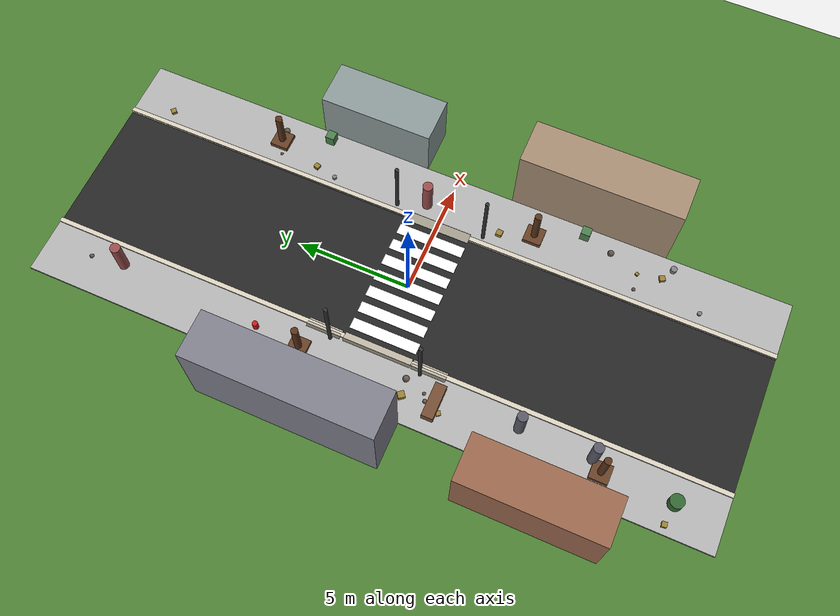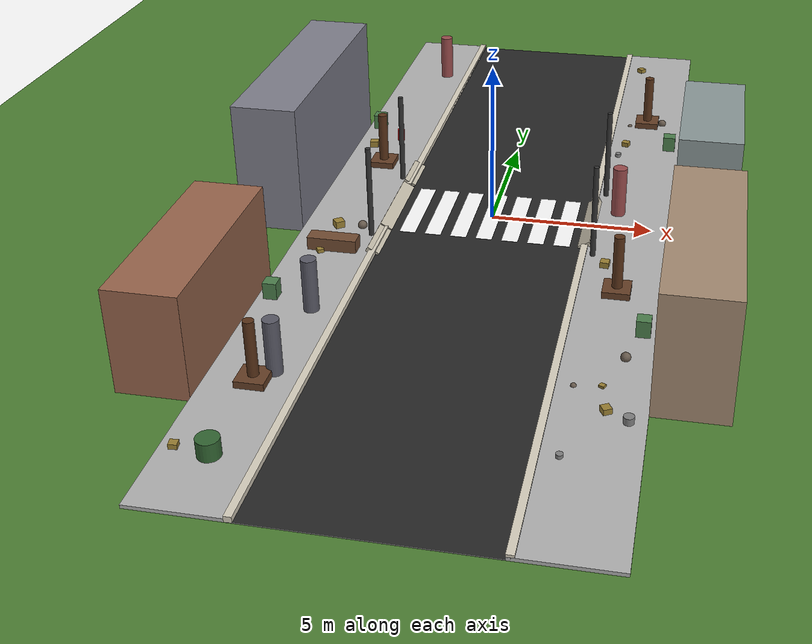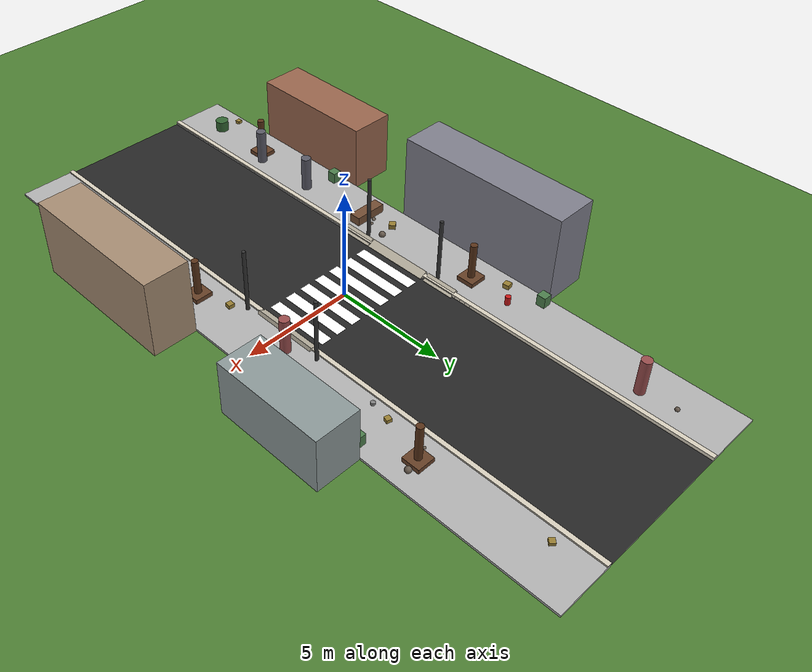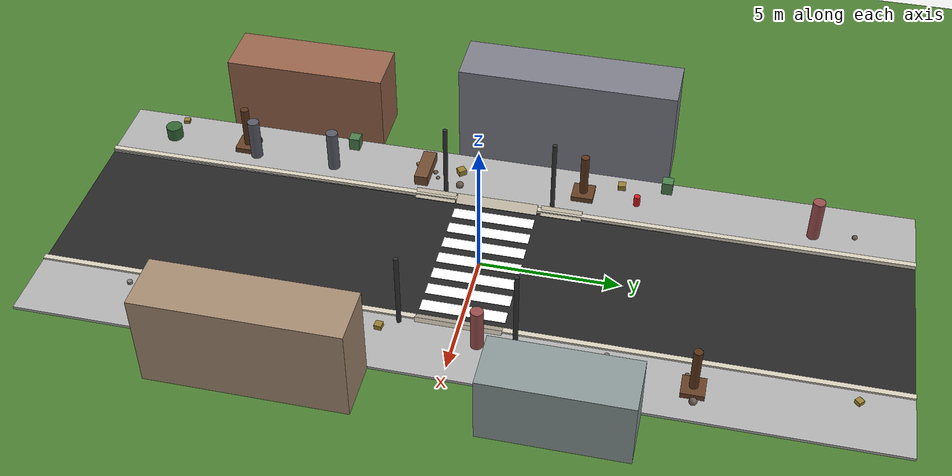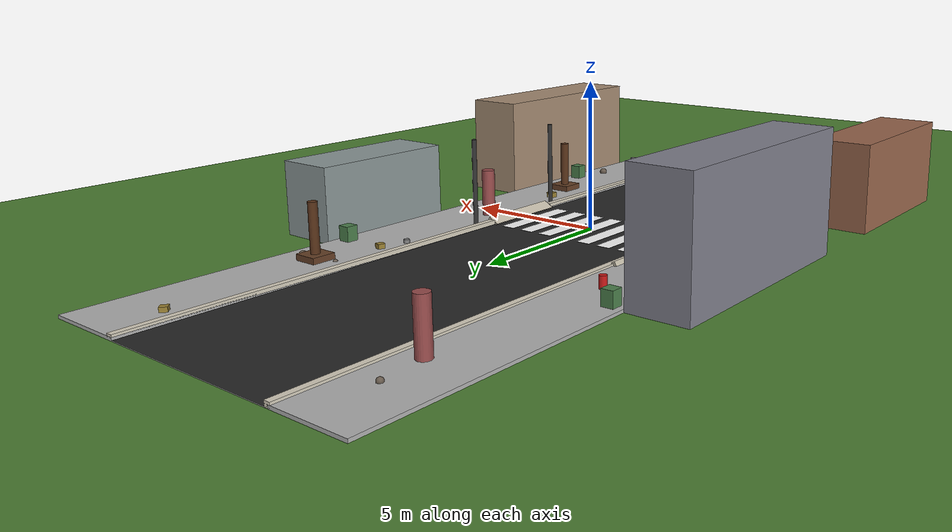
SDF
<?xml version="1.0" ?>
<sdf version="1.9">
  <world name="level4_unseen_eval">
    <physics name="1ms" type="ignore">
      <max_step_size>0.001</max_step_size>
      <real_time_factor>1.0</real_time_factor>
    </physics>
    <plugin filename="gz-sim-physics-system" name="gz::sim::systems::Physics"/>
    <plugin filename="gz-sim-scene-broadcaster-system" name="gz::sim::systems::SceneBroadcaster"/>
    <plugin filename="gz-sim-sensors-system" name="gz::sim::systems::Sensors">
      <render_engine>ogre2</render_engine>
    </plugin>
    <plugin filename="gz-sim-user-commands-system" name="gz::sim::systems::UserCommands"/>

    <light type="directional" name="sun">
      <cast_shadows>true</cast_shadows>
      <pose>0 0 10 0 0 0</pose>
      <diffuse>0.8 0.8 0.8 1</diffuse>
      <specular>0.2 0.2 0.2 1</specular>
      <attenuation><range>1000</range><constant>0.9</constant><linear>0.01</linear><quadratic>0.001</quadratic></attenuation>
      <direction>-0.5 0.1 -0.9</direction>
    </light>

    <!-- Level 4: 미확인 검증 환경 - 훈련 세트와 다른 배치, 정적+동적 보행자 혼합 -->

    <model name="ground_plane_visual">
      <static>true</static>
      <pose>0 0 -0.01 0 0 0</pose>
      <link name="link">
        <collision name="collision"><geometry><box><size>100 100 0.02</size></box></geometry></collision>
        <visual name="visual"><geometry><box><size>100 100 0.02</size></box></geometry>
          <material><ambient>0.3 0.5 0.2 1</ambient><diffuse>0.3 0.5 0.2 1</diffuse></material></visual>
      </link>
    </model>

    <model name="road">
      <static>true</static>
      <pose>0 0 0.01 0 0 0</pose>
      <link name="link">
        <collision name="collision"><geometry><box><size>6.0 30.0 0.02</size></box></geometry></collision>
        <visual name="visual"><geometry><box><size>6.0 30.0 0.02</size></box></geometry>
          <material><ambient>0.15 0.15 0.15 1</ambient><diffuse>0.15 0.15 0.15 1</diffuse></material></visual>
      </link>
    </model>

    <model name="sidewalk_left">
      <static>true</static>
      <pose>-4.3 0 0.05 0 0 0</pose>
      <link name="link">
        <collision name="collision"><geometry><box><size>2.6 30.0 0.1</size></box></geometry></collision>
        <visual name="visual"><geometry><box><size>2.6 30.0 0.1</size></box></geometry>
          <material><ambient>0.7 0.7 0.7 1</ambient><diffuse>0.7 0.7 0.7 1</diffuse></material></visual>
      </link>
    </model>

    <model name="sidewalk_right">
      <static>true</static>
      <pose>4.3 0 0.05 0 0 0</pose>
      <link name="link">
        <collision name="collision"><geometry><box><size>2.6 30.0 0.1</size></box></geometry></collision>
        <visual name="visual"><geometry><box><size>2.6 30.0 0.1</size></box></geometry>
          <material><ambient>0.7 0.7 0.7 1</ambient><diffuse>0.7 0.7 0.7 1</diffuse></material></visual>
      </link>
    </model>

    <model name="crosswalk_1">
      <static>true</static>
      <pose>-2.4 0 0.02 0 0 0</pose>
      <link name="link">
        <collision name="collision"><geometry><box><size>0.5 3 0.01</size></box></geometry></collision>
        <visual name="visual"><geometry><box><size>0.5 3 0.01</size></box></geometry>
          <material><ambient>1 1 1 1</ambient><diffuse>1 1 1 1</diffuse></material></visual>
      </link>
    </model>

    <model name="crosswalk_2">
      <static>true</static>
      <pose>-1.6 0 0.02 0 0 0</pose>
      <link name="link">
        <collision name="collision"><geometry><box><size>0.5 3 0.01</size></box></geometry></collision>
        <visual name="visual"><geometry><box><size>0.5 3 0.01</size></box></geometry>
          <material><ambient>1 1 1 1</ambient><diffuse>1 1 1 1</diffuse></material></visual>
      </link>
    </model>

    <model name="crosswalk_3">
      <static>true</static>
      <pose>-0.8 0 0.02 0 0 0</pose>
      <link name="link">
        <collision name="collision"><geometry><box><size>0.5 3 0.01</size></box></geometry></collision>
        <visual name="visual"><geometry><box><size>0.5 3 0.01</size></box></geometry>
          <material><ambient>1 1 1 1</ambient><diffuse>1 1 1 1</diffuse></material></visual>
      </link>
    </model>

    <model name="crosswalk_4">
      <static>true</static>
      <pose>0.0 0 0.02 0 0 0</pose>
      <link name="link">
        <collision name="collision"><geometry><box><size>0.5 3 0.01</size></box></geometry></collision>
        <visual name="visual"><geometry><box><size>0.5 3 0.01</size></box></geometry>
          <material><ambient>1 1 1 1</ambient><diffuse>1 1 1 1</diffuse></material></visual>
      </link>
    </model>

    <model name="crosswalk_5">
      <static>true</static>
      <pose>0.8 0 0.02 0 0 0</pose>
      <link name="link">
        <collision name="collision"><geometry><box><size>0.5 3 0.01</size></box></geometry></collision>
        <visual name="visual"><geometry><box><size>0.5 3 0.01</size></box></geometry>
          <material><ambient>1 1 1 1</ambient><diffuse>1 1 1 1</diffuse></material></visual>
      </link>
    </model>

    <model name="crosswalk_6">
      <static>true</static>
      <pose>1.6 0 0.02 0 0 0</pose>
      <link name="link">
        <collision name="collision"><geometry><box><size>0.5 3 0.01</size></box></geometry></collision>
        <visual name="visual"><geometry><box><size>0.5 3 0.01</size></box></geometry>
          <material><ambient>1 1 1 1</ambient><diffuse>1 1 1 1</diffuse></material></visual>
      </link>
    </model>

    <model name="crosswalk_7">
      <static>true</static>
      <pose>2.4 0 0.02 0 0 0</pose>
      <link name="link">
        <collision name="collision"><geometry><box><size>0.5 3 0.01</size></box></geometry></collision>
        <visual name="visual"><geometry><box><size>0.5 3 0.01</size></box></geometry>
          <material><ambient>1 1 1 1</ambient><diffuse>1 1 1 1</diffuse></material></visual>
      </link>
    </model>

    <model name="curb_left_south">
      <static>true</static>
      <pose>-3.1 -8.25 0.09 0 0 0</pose>
      <link name="link">
        <collision name="collision"><geometry><box><size>0.2 13.5 0.16</size></box></geometry></collision>
        <visual name="visual"><geometry><box><size>0.2 13.5 0.16</size></box></geometry>
          <material><ambient>0.85 0.82 0.75 1</ambient><diffuse>0.85 0.82 0.75 1</diffuse></material></visual>
      </link>
    </model>

    <model name="curb_left_north">
      <static>true</static>
      <pose>-3.1 8.25 0.09 0 0 0</pose>
      <link name="link">
        <collision name="collision"><geometry><box><size>0.2 13.5 0.16</size></box></geometry></collision>
        <visual name="visual"><geometry><box><size>0.2 13.5 0.16</size></box></geometry>
          <material><ambient>0.85 0.82 0.75 1</ambient><diffuse>0.85 0.82 0.75 1</diffuse></material></visual>
      </link>
    </model>

    <model name="curb_right_south">
      <static>true</static>
      <pose>3.1 -8.25 0.09 0 0 0</pose>
      <link name="link">
        <collision name="collision"><geometry><box><size>0.2 13.5 0.16</size></box></geometry></collision>
        <visual name="visual"><geometry><box><size>0.2 13.5 0.16</size></box></geometry>
          <material><ambient>0.85 0.82 0.75 1</ambient><diffuse>0.85 0.82 0.75 1</diffuse></material></visual>
      </link>
    </model>

    <model name="curb_right_north">
      <static>true</static>
      <pose>3.1 8.25 0.09 0 0 0</pose>
      <link name="link">
        <collision name="collision"><geometry><box><size>0.2 13.5 0.16</size></box></geometry></collision>
        <visual name="visual"><geometry><box><size>0.2 13.5 0.16</size></box></geometry>
          <material><ambient>0.85 0.82 0.75 1</ambient><diffuse>0.85 0.82 0.75 1</diffuse></material></visual>
      </link>
    </model>

    <model name="curb_ramp_left">
      <static>true</static>
      <pose>-3.1 0 0.08 0 0.5 0</pose>
      <link name="link">
        <collision name="collision"><geometry><box><size>0.4 3 0.16</size></box></geometry></collision>
        <visual name="visual"><geometry><box><size>0.4 3 0.16</size></box></geometry>
          <material><ambient>0.75 0.72 0.65 1</ambient><diffuse>0.75 0.72 0.65 1</diffuse></material></visual>
      </link>
    </model>

    <model name="curb_ramp_right">
      <static>true</static>
      <pose>3.1 0 0.08 0 -0.5 0</pose>
      <link name="link">
        <collision name="collision"><geometry><box><size>0.4 3 0.16</size></box></geometry></collision>
        <visual name="visual"><geometry><box><size>0.4 3 0.16</size></box></geometry>
          <material><ambient>0.75 0.72 0.65 1</ambient><diffuse>0.75 0.72 0.65 1</diffuse></material></visual>
      </link>
    </model>

    <model name="curb_extra_ramp_0">
      <static>true</static>
      <pose>-3.1 -2.30 0.08 0 0.5 0</pose>
      <link name="link">
        <collision name="collision"><geometry><box><size>0.4 1.5 0.16</size></box></geometry></collision>
        <visual name="visual"><geometry><box><size>0.4 1.5 0.16</size></box></geometry>
          <material><ambient>0.75 0.72 0.65 1</ambient><diffuse>0.75 0.72 0.65 1</diffuse></material></visual>
      </link>
    </model>

    <model name="curb_extra_ramp_1">
      <static>true</static>
      <pose>-3.1 2.39 0.08 0 0.5 0</pose>
      <link name="link">
        <collision name="collision"><geometry><box><size>0.4 1.5 0.16</size></box></geometry></collision>
        <visual name="visual"><geometry><box><size>0.4 1.5 0.16</size></box></geometry>
          <material><ambient>0.75 0.72 0.65 1</ambient><diffuse>0.75 0.72 0.65 1</diffuse></material></visual>
      </link>
    </model>

    <model name="building_left_1">
      <static>true</static>
      <pose>-6.6 -8 1.5 0 0 0</pose>
      <link name="link">
        <collision name="collision"><geometry><box><size>2 6 3</size></box></geometry></collision>
        <visual name="visual"><geometry><box><size>2 6 3</size></box></geometry>
          <material><ambient>0.6 0.4 0.3 1</ambient><diffuse>0.6 0.4 0.3 1</diffuse></material></visual>
      </link>
    </model>

    <model name="building_left_2">
      <static>true</static>
      <pose>-6.6 2 2 0 0 0</pose>
      <link name="link">
        <collision name="collision"><geometry><box><size>2 8 4</size></box></geometry></collision>
        <visual name="visual"><geometry><box><size>2 8 4</size></box></geometry>
          <material><ambient>0.5 0.5 0.55 1</ambient><diffuse>0.5 0.5 0.55 1</diffuse></material></visual>
      </link>
    </model>

    <model name="building_right_1">
      <static>true</static>
      <pose>6.6 -6 1.75 0 0 0</pose>
      <link name="link">
        <collision name="collision"><geometry><box><size>2 7 3.5</size></box></geometry></collision>
        <visual name="visual"><geometry><box><size>2 7 3.5</size></box></geometry>
          <material><ambient>0.65 0.55 0.45 1</ambient><diffuse>0.65 0.55 0.45 1</diffuse></material></visual>
      </link>
    </model>

    <model name="building_right_2">
      <static>true</static>
      <pose>6.6 4 1.25 0 0 0</pose>
      <link name="link">
        <collision name="collision"><geometry><box><size>2 5 2.5</size></box></geometry></collision>
        <visual name="visual"><geometry><box><size>2 5 2.5</size></box></geometry>
          <material><ambient>0.55 0.6 0.6 1</ambient><diffuse>0.55 0.6 0.6 1</diffuse></material></visual>
      </link>
    </model>

    <model name="tree_1">
      <static>true</static>
      <pose>-4.3 -10 0.15 0 0 0</pose>
      <link name="link">
        <collision name="collision"><geometry><box><size>0.8 0.8 0.3</size></box></geometry></collision>
        <visual name="visual"><geometry><box><size>0.8 0.8 0.3</size></box></geometry>
          <material><ambient>0.4 0.25 0.15 1</ambient><diffuse>0.4 0.25 0.15 1</diffuse></material></visual>
      </link>
    </model>

    <model name="tree_1_trunk">
      <static>true</static>
      <pose>-4.3 -10 1.1 0 0 0</pose>
      <link name="link">
        <collision name="collision"><geometry><cylinder><radius>0.15</radius><length>1.6</length></cylinder></geometry></collision>
        <visual name="visual"><geometry><cylinder><radius>0.15</radius><length>1.6</length></cylinder></geometry>
          <material><ambient>0.35 0.2 0.1 1</ambient><diffuse>0.35 0.2 0.1 1</diffuse></material></visual>
      </link>
    </model>

    <model name="tree_2">
      <static>true</static>
      <pose>4.3 -4 0.15 0 0 0</pose>
      <link name="link">
        <collision name="collision"><geometry><box><size>0.8 0.8 0.3</size></box></geometry></collision>
        <visual name="visual"><geometry><box><size>0.8 0.8 0.3</size></box></geometry>
          <material><ambient>0.4 0.25 0.15 1</ambient><diffuse>0.4 0.25 0.15 1</diffuse></material></visual>
      </link>
    </model>

    <model name="tree_2_trunk">
      <static>true</static>
      <pose>4.3 -4 1.1 0 0 0</pose>
      <link name="link">
        <collision name="collision"><geometry><cylinder><radius>0.15</radius><length>1.6</length></cylinder></geometry></collision>
        <visual name="visual"><geometry><cylinder><radius>0.15</radius><length>1.6</length></cylinder></geometry>
          <material><ambient>0.35 0.2 0.1 1</ambient><diffuse>0.35 0.2 0.1 1</diffuse></material></visual>
      </link>
    </model>

    <model name="tree_3">
      <static>true</static>
      <pose>-4.3 3 0.15 0 0 0</pose>
      <link name="link">
        <collision name="collision"><geometry><box><size>0.8 0.8 0.3</size></box></geometry></collision>
        <visual name="visual"><geometry><box><size>0.8 0.8 0.3</size></box></geometry>
          <material><ambient>0.4 0.25 0.15 1</ambient><diffuse>0.4 0.25 0.15 1</diffuse></material></visual>
      </link>
    </model>

    <model name="tree_3_trunk">
      <static>true</static>
      <pose>-4.3 3 1.1 0 0 0</pose>
      <link name="link">
        <collision name="collision"><geometry><cylinder><radius>0.15</radius><length>1.6</length></cylinder></geometry></collision>
        <visual name="visual"><geometry><cylinder><radius>0.15</radius><length>1.6</length></cylinder></geometry>
          <material><ambient>0.35 0.2 0.1 1</ambient><diffuse>0.35 0.2 0.1 1</diffuse></material></visual>
      </link>
    </model>

    <model name="tree_4">
      <static>true</static>
      <pose>4.3 8 0.15 0 0 0</pose>
      <link name="link">
        <collision name="collision"><geometry><box><size>0.8 0.8 0.3</size></box></geometry></collision>
        <visual name="visual"><geometry><box><size>0.8 0.8 0.3</size></box></geometry>
          <material><ambient>0.4 0.25 0.15 1</ambient><diffuse>0.4 0.25 0.15 1</diffuse></material></visual>
      </link>
    </model>

    <model name="tree_4_trunk">
      <static>true</static>
      <pose>4.3 8 1.1 0 0 0</pose>
      <link name="link">
        <collision name="collision"><geometry><cylinder><radius>0.15</radius><length>1.6</length></cylinder></geometry></collision>
        <visual name="visual"><geometry><cylinder><radius>0.15</radius><length>1.6</length></cylinder></geometry>
          <material><ambient>0.35 0.2 0.1 1</ambient><diffuse>0.35 0.2 0.1 1</diffuse></material></visual>
      </link>
    </model>

    <model name="bench_1">
      <static>true</static>
      <pose>-4.3 -3 0.25 0 0 0</pose>
      <link name="link">
        <collision name="collision"><geometry><box><size>1.5 0.5 0.5</size></box></geometry></collision>
        <visual name="visual"><geometry><box><size>1.5 0.5 0.5</size></box></geometry>
          <material><ambient>0.45 0.3 0.2 1</ambient><diffuse>0.45 0.3 0.2 1</diffuse></material></visual>
      </link>
    </model>

    <model name="trash_bin_1">
      <static>true</static>
      <pose>-4.3 -13 0.3 0 0 0</pose>
      <link name="link">
        <collision name="collision"><geometry><cylinder><radius>0.3</radius><length>0.6</length></cylinder></geometry></collision>
        <visual name="visual"><geometry><cylinder><radius>0.3</radius><length>0.6</length></cylinder></geometry>
          <material><ambient>0.2 0.4 0.2 1</ambient><diffuse>0.2 0.4 0.2 1</diffuse></material></visual>
      </link>
    </model>

    <model name="hydrant_1">
      <static>true</static>
      <pose>-4.2 5 0.25 0 0 0</pose>
      <link name="link">
        <collision name="collision"><geometry><cylinder><radius>0.12</radius><length>0.5</length></cylinder></geometry></collision>
        <visual name="visual"><geometry><cylinder><radius>0.12</radius><length>0.5</length></cylinder></geometry>
          <material><ambient>0.8 0.1 0.1 1</ambient><diffuse>0.8 0.1 0.1 1</diffuse></material></visual>
      </link>
    </model>

    <model name="traffic_light_1">
      <static>true</static>
      <pose>-3.4 -2 1.5 0 0 0</pose>
      <link name="link">
        <collision name="collision"><geometry><cylinder><radius>0.08</radius><length>3</length></cylinder></geometry></collision>
        <visual name="visual"><geometry><cylinder><radius>0.08</radius><length>3</length></cylinder></geometry>
          <material><ambient>0.2 0.2 0.2 1</ambient><diffuse>0.2 0.2 0.2 1</diffuse></material></visual>
      </link>
    </model>

    <model name="traffic_light_2">
      <static>true</static>
      <pose>3.4 2 1.5 0 0 0</pose>
      <link name="link">
        <collision name="collision"><geometry><cylinder><radius>0.08</radius><length>3</length></cylinder></geometry></collision>
        <visual name="visual"><geometry><cylinder><radius>0.08</radius><length>3</length></cylinder></geometry>
          <material><ambient>0.2 0.2 0.2 1</ambient><diffuse>0.2 0.2 0.2 1</diffuse></material></visual>
      </link>
    </model>

    <model name="traffic_light_3">
      <static>true</static>
      <pose>-3.4 2 1.5 0 0 0</pose>
      <link name="link">
        <collision name="collision"><geometry><cylinder><radius>0.08</radius><length>3</length></cylinder></geometry></collision>
        <visual name="visual"><geometry><cylinder><radius>0.08</radius><length>3</length></cylinder></geometry>
          <material><ambient>0.2 0.2 0.2 1</ambient><diffuse>0.2 0.2 0.2 1</diffuse></material></visual>
      </link>
    </model>

    <model name="traffic_light_4">
      <static>true</static>
      <pose>3.4 -2 1.5 0 0 0</pose>
      <link name="link">
        <collision name="collision"><geometry><cylinder><radius>0.08</radius><length>3</length></cylinder></geometry></collision>
        <visual name="visual"><geometry><cylinder><radius>0.08</radius><length>3</length></cylinder></geometry>
          <material><ambient>0.2 0.2 0.2 1</ambient><diffuse>0.2 0.2 0.2 1</diffuse></material></visual>
      </link>
    </model>

    <model name="pedestrian_static_0">
      <static>true</static>
      <pose>-3.90 -9.54 0.85 0 0 0</pose>
      <link name="link">
        <collision name="collision"><geometry><cylinder><radius>0.22</radius><length>1.7</length></cylinder></geometry></collision>
        <visual name="visual"><geometry><cylinder><radius>0.22</radius><length>1.7</length></cylinder></geometry>
          <material><ambient>0.35 0.35 0.4 1</ambient><diffuse>0.35 0.35 0.4 1</diffuse></material></visual>
      </link>
    </model>

    <model name="pedestrian_static_1">
      <static>true</static>
      <pose>-3.90 -6.47 0.85 0 0 0</pose>
      <link name="link">
        <collision name="collision"><geometry><cylinder><radius>0.22</radius><length>1.7</length></cylinder></geometry></collision>
        <visual name="visual"><geometry><cylinder><radius>0.22</radius><length>1.7</length></cylinder></geometry>
          <material><ambient>0.35 0.35 0.4 1</ambient><diffuse>0.35 0.35 0.4 1</diffuse></material></visual>
      </link>
    </model>

    <model name="pedestrian_dynamic_0">
      <static>false</static>
      <pose>3.90 0.80 0.85 0 0 0</pose>
      <link name="link">
        <collision name="collision"><geometry><cylinder><radius>0.22</radius><length>1.7</length></cylinder></geometry></collision>
        <visual name="visual"><geometry><cylinder><radius>0.22</radius><length>1.7</length></cylinder></geometry>
          <material><ambient>0.6 0.3 0.3 1</ambient><diffuse>0.6 0.3 0.3 1</diffuse></material></visual>
      </link>
    </model>

    <model name="pedestrian_dynamic_1">
      <static>false</static>
      <pose>-3.90 11.40 0.85 0 0 0</pose>
      <link name="link">
        <collision name="collision"><geometry><cylinder><radius>0.22</radius><length>1.7</length></cylinder></geometry></collision>
        <visual name="visual"><geometry><cylinder><radius>0.22</radius><length>1.7</length></cylinder></geometry>
          <material><ambient>0.6 0.3 0.3 1</ambient><diffuse>0.6 0.3 0.3 1</diffuse></material></visual>
      </link>
    </model>

    <model name="obstacle_0">
      <static>true</static>
      <pose>3.70 6.00 0.14 0 0 1.29</pose>
      <link name="link">
        <collision name="collision"><geometry><box><size>0.23 0.23 0.23</size></box></geometry></collision>
        <visual name="visual"><geometry><box><size>0.23 0.23 0.23</size></box></geometry>
          <material><ambient>0.6 0.5 0.2 1</ambient><diffuse>0.6 0.5 0.2 1</diffuse></material></visual>
      </link>
    </model>

    <model name="obstacle_1">
      <static>true</static>
      <pose>-5.00 4.34 0.16 0 0 0.13</pose>
      <link name="link">
        <collision name="collision"><geometry><box><size>0.28 0.28 0.28</size></box></geometry></collision>
        <visual name="visual"><geometry><box><size>0.28 0.28 0.28</size></box></geometry>
          <material><ambient>0.6 0.5 0.2 1</ambient><diffuse>0.6 0.5 0.2 1</diffuse></material></visual>
      </link>
    </model>

    <model name="obstacle_2">
      <static>true</static>
      <pose>-4.36 -2.63 0.11 0 0 0</pose>
      <link name="link">
        <collision name="collision"><geometry><sphere><radius>0.09155193719741817</radius></sphere></geometry></collision>
        <visual name="visual"><geometry><sphere><radius>0.09155193719741817</radius></sphere></geometry>
          <material><ambient>0.4 0.35 0.3 1</ambient><diffuse>0.4 0.35 0.3 1</diffuse></material></visual>
      </link>
    </model>

    <model name="obstacle_3">
      <static>true</static>
      <pose>3.71 13.22 0.13 0 0 0.81</pose>
      <link name="link">
        <collision name="collision"><geometry><box><size>0.23 0.23 0.23</size></box></geometry></collision>
        <visual name="visual"><geometry><box><size>0.23 0.23 0.23</size></box></geometry>
          <material><ambient>0.6 0.5 0.2 1</ambient><diffuse>0.6 0.5 0.2 1</diffuse></material></visual>
      </link>
    </model>

    <model name="obstacle_4">
      <static>true</static>
      <pose>-4.09 12.87 0.12 0 0 0</pose>
      <link name="link">
        <collision name="collision"><geometry><sphere><radius>0.09860199399539216</radius></sphere></geometry></collision>
        <visual name="visual"><geometry><sphere><radius>0.09860199399539216</radius></sphere></geometry>
          <material><ambient>0.4 0.35 0.3 1</ambient><diffuse>0.4 0.35 0.3 1</diffuse></material></visual>
      </link>
    </model>

    <model name="obstacle_5">
      <static>true</static>
      <pose>-3.80 -1.57 0.16 0 0 0</pose>
      <link name="link">
        <collision name="collision"><geometry><sphere><radius>0.1439877575533915</radius></sphere></geometry></collision>
        <visual name="visual"><geometry><sphere><radius>0.1439877575533915</radius></sphere></geometry>
          <material><ambient>0.4 0.35 0.3 1</ambient><diffuse>0.4 0.35 0.3 1</diffuse></material></visual>
      </link>
    </model>

    <model name="obstacle_6">
      <static>true</static>
      <pose>-5.23 -12.87 0.13 0 0 0.13</pose>
      <link name="link">
        <collision name="collision"><geometry><box><size>0.22 0.22 0.22</size></box></geometry></collision>
        <visual name="visual"><geometry><box><size>0.22 0.22 0.22</size></box></geometry>
          <material><ambient>0.6 0.5 0.2 1</ambient><diffuse>0.6 0.5 0.2 1</diffuse></material></visual>
      </link>
    </model>

    <model name="obstacle_7">
      <static>true</static>
      <pose>4.56 -9.64 0.14 0 0 0.52</pose>
      <link name="link">
        <collision name="collision"><geometry><box><size>0.24 0.24 0.24</size></box></geometry></collision>
        <visual name="visual"><geometry><box><size>0.24 0.24 0.24</size></box></geometry>
          <material><ambient>0.6 0.5 0.2 1</ambient><diffuse>0.6 0.5 0.2 1</diffuse></material></visual>
      </link>
    </model>

    <model name="obstacle_8">
      <static>true</static>
      <pose>3.70 7.75 0.09 0 0 0</pose>
      <link name="link">
        <collision name="collision"><geometry><sphere><radius>0.07443199255492311</radius></sphere></geometry></collision>
        <visual name="visual"><geometry><sphere><radius>0.07443199255492311</radius></sphere></geometry>
          <material><ambient>0.4 0.35 0.3 1</ambient><diffuse>0.4 0.35 0.3 1</diffuse></material></visual>
      </link>
    </model>

    <model name="obstacle_9">
      <static>true</static>
      <pose>3.82 -2.59 0.15 0 0 1.48</pose>
      <link name="link">
        <collision name="collision"><geometry><box><size>0.26 0.26 0.26</size></box></geometry></collision>
        <visual name="visual"><geometry><box><size>0.26 0.26 0.26</size></box></geometry>
          <material><ambient>0.6 0.5 0.2 1</ambient><diffuse>0.6 0.5 0.2 1</diffuse></material></visual>
      </link>
    </model>

    <model name="obstacle_10">
      <static>true</static>
      <pose>5.14 -9.96 0.16 0 0 0</pose>
      <link name="link">
        <collision name="collision"><geometry><cylinder><radius>0.13911435587308618</radius><length>0.27822871174617236</length></cylinder></geometry></collision>
        <visual name="visual"><geometry><cylinder><radius>0.13911435587308618</radius><length>0.27822871174617236</length></cylinder></geometry>
          <material><ambient>0.5 0.5 0.5 1</ambient><diffuse>0.5 0.5 0.5 1</diffuse></material></visual>
      </link>
    </model>

    <model name="obstacle_11">
      <static>true</static>
      <pose>-4.08 -2.48 0.10 0 0 0</pose>
      <link name="link">
        <collision name="collision"><geometry><sphere><radius>0.07771865971011804</radius></sphere></geometry></collision>
        <visual name="visual"><geometry><sphere><radius>0.07771865971011804</radius></sphere></geometry>
          <material><ambient>0.4 0.35 0.3 1</ambient><diffuse>0.4 0.35 0.3 1</diffuse></material></visual>
      </link>
    </model>

    <model name="obstacle_12">
      <static>true</static>
      <pose>3.65 -8.70 0.10 0 0 0</pose>
      <link name="link">
        <collision name="collision"><geometry><sphere><radius>0.08164091582544677</radius></sphere></geometry></collision>
        <visual name="visual"><geometry><sphere><radius>0.08164091582544677</radius></sphere></geometry>
          <material><ambient>0.4 0.35 0.3 1</ambient><diffuse>0.4 0.35 0.3 1</diffuse></material></visual>
      </link>
    </model>

    <model name="obstacle_13">
      <static>true</static>
      <pose>4.84 8.05 0.16 0 0 0</pose>
      <link name="link">
        <collision name="collision"><geometry><sphere><radius>0.137690033470153</radius></sphere></geometry></collision>
        <visual name="visual"><geometry><sphere><radius>0.137690033470153</radius></sphere></geometry>
          <material><ambient>0.4 0.35 0.3 1</ambient><diffuse>0.4 0.35 0.3 1</diffuse></material></visual>
      </link>
    </model>

    <model name="obstacle_14">
      <static>true</static>
      <pose>3.67 -11.55 0.11 0 0 0</pose>
      <link name="link">
        <collision name="collision"><geometry><cylinder><radius>0.0930171424216917</radius><length>0.1860342848433834</length></cylinder></geometry></collision>
        <visual name="visual"><geometry><cylinder><radius>0.0930171424216917</radius><length>0.1860342848433834</length></cylinder></geometry>
          <material><ambient>0.5 0.5 0.5 1</ambient><diffuse>0.5 0.5 0.5 1</diffuse></material></visual>
      </link>
    </model>

    <model name="obstacle_15">
      <static>true</static>
      <pose>-4.63 -3.32 0.12 0 0 0.61</pose>
      <link name="link">
        <collision name="collision"><geometry><box><size>0.19 0.19 0.19</size></box></geometry></collision>
        <visual name="visual"><geometry><box><size>0.19 0.19 0.19</size></box></geometry>
          <material><ambient>0.6 0.5 0.2 1</ambient><diffuse>0.6 0.5 0.2 1</diffuse></material></visual>
      </link>
    </model>

    <model name="obstacle_16">
      <static>true</static>
      <pose>4.37 -8.61 0.09 0 0 1.13</pose>
      <link name="link">
        <collision name="collision"><geometry><box><size>0.15 0.15 0.15</size></box></geometry></collision>
        <visual name="visual"><geometry><box><size>0.15 0.15 0.15</size></box></geometry>
          <material><ambient>0.6 0.5 0.2 1</ambient><diffuse>0.6 0.5 0.2 1</diffuse></material></visual>
      </link>
    </model>

    <model name="obstacle_17">
      <static>true</static>
      <pose>4.84 -7.28 0.16 0 0 0</pose>
      <link name="link">
        <collision name="collision"><geometry><sphere><radius>0.1382865629520023</radius></sphere></geometry></collision>
        <visual name="visual"><geometry><sphere><radius>0.1382865629520023</radius></sphere></geometry>
          <material><ambient>0.4 0.35 0.3 1</ambient><diffuse>0.4 0.35 0.3 1</diffuse></material></visual>
      </link>
    </model>

    <model name="obstacle_18">
      <static>true</static>
      <pose>3.51 5.07 0.12 0 0 0</pose>
      <link name="link">
        <collision name="collision"><geometry><cylinder><radius>0.0951146299949908</radius><length>0.1902292599899816</length></cylinder></geometry></collision>
        <visual name="visual"><geometry><cylinder><radius>0.0951146299949908</radius><length>0.1902292599899816</length></cylinder></geometry>
          <material><ambient>0.5 0.5 0.5 1</ambient><diffuse>0.5 0.5 0.5 1</diffuse></material></visual>
      </link>
    </model>

    <model name="obstacle_19">
      <static>true</static>
      <pose>-4.53 -1.67 0.17 0 0 0.66</pose>
      <link name="link">
        <collision name="collision"><geometry><box><size>0.29 0.29 0.29</size></box></geometry></collision>
        <visual name="visual"><geometry><box><size>0.29 0.29 0.29</size></box></geometry>
          <material><ambient>0.6 0.5 0.2 1</ambient><diffuse>0.6 0.5 0.2 1</diffuse></material></visual>
      </link>
    </model>

    <model name="narrow_gate_left">
      <static>true</static>
      <pose>-5.20 6.0 0.3 0 0 0</pose>
      <link name="link">
        <collision name="collision"><geometry><box><size>0.4 0.4 0.6</size></box></geometry></collision>
        <visual name="visual"><geometry><box><size>0.4 0.4 0.6</size></box></geometry>
          <material><ambient>0.3 0.5 0.3 1</ambient><diffuse>0.3 0.5 0.3 1</diffuse></material></visual>
      </link>
    </model>

    <model name="narrow_gate_right">
      <static>true</static>
      <pose>5.20 6.0 0.3 0 0 0</pose>
      <link name="link">
        <collision name="collision"><geometry><box><size>0.4 0.4 0.6</size></box></geometry></collision>
        <visual name="visual"><geometry><box><size>0.4 0.4 0.6</size></box></geometry>
          <material><ambient>0.3 0.5 0.3 1</ambient><diffuse>0.3 0.5 0.3 1</diffuse></material></visual>
      </link>
    </model>

    <model name="narrow_gate_left2">
      <static>true</static>
      <pose>-5.20 -6.0 0.3 0 0 0</pose>
      <link name="link">
        <collision name="collision"><geometry><box><size>0.4 0.4 0.6</size></box></geometry></collision>
        <visual name="visual"><geometry><box><size>0.4 0.4 0.6</size></box></geometry>
          <material><ambient>0.3 0.5 0.3 1</ambient><diffuse>0.3 0.5 0.3 1</diffuse></material></visual>
      </link>
    </model>

    <model name="narrow_gate_right2">
      <static>true</static>
      <pose>5.20 -6.0 0.3 0 0 0</pose>
      <link name="link">
        <collision name="collision"><geometry><box><size>0.4 0.4 0.6</size></box></geometry></collision>
        <visual name="visual"><geometry><box><size>0.4 0.4 0.6</size></box></geometry>
          <material><ambient>0.3 0.5 0.3 1</ambient><diffuse>0.3 0.5 0.3 1</diffuse></material></visual>
      </link>
    </model>

  </world>
</sdf>
